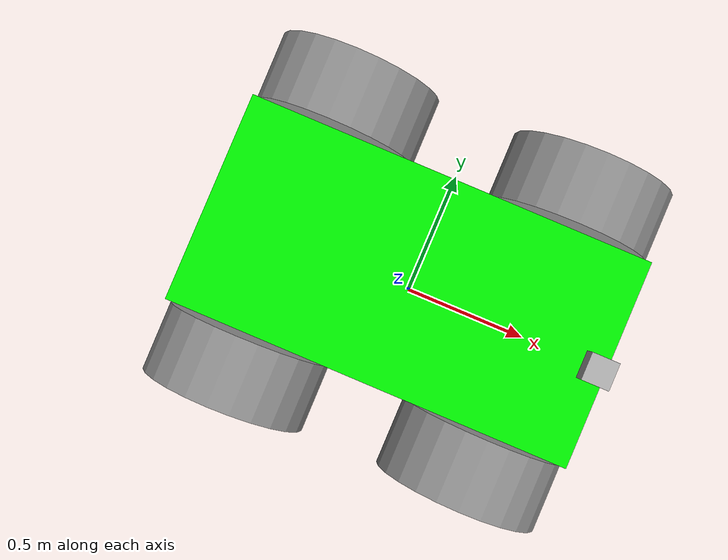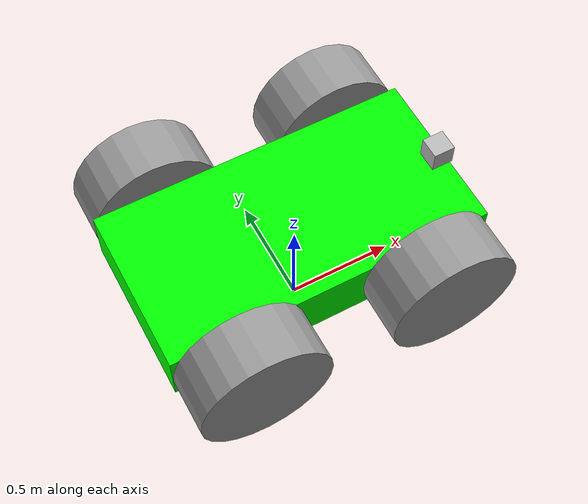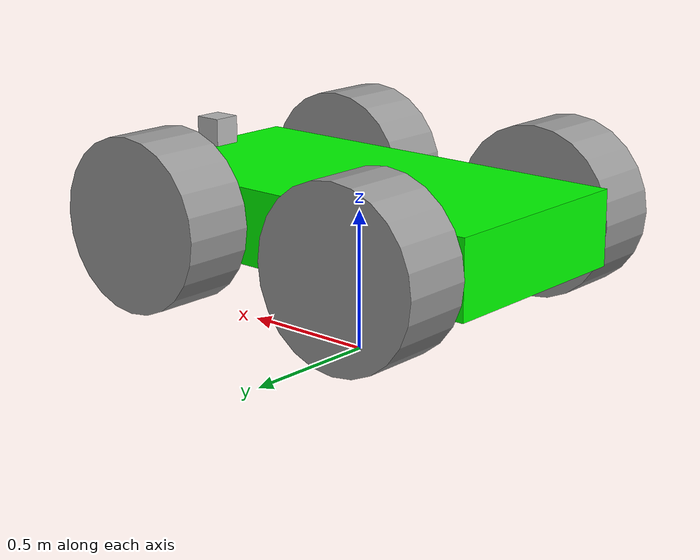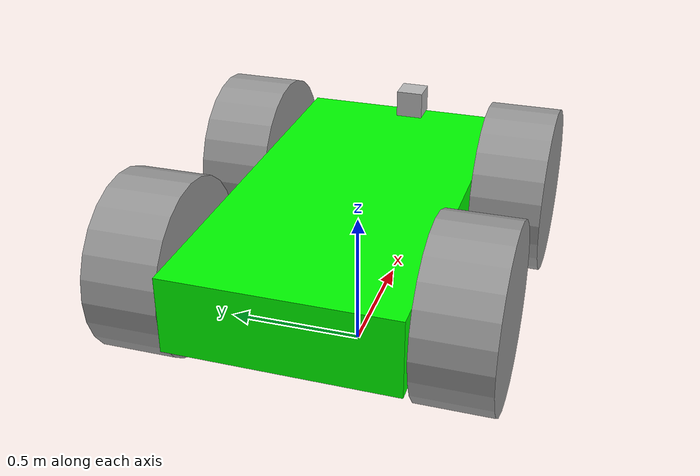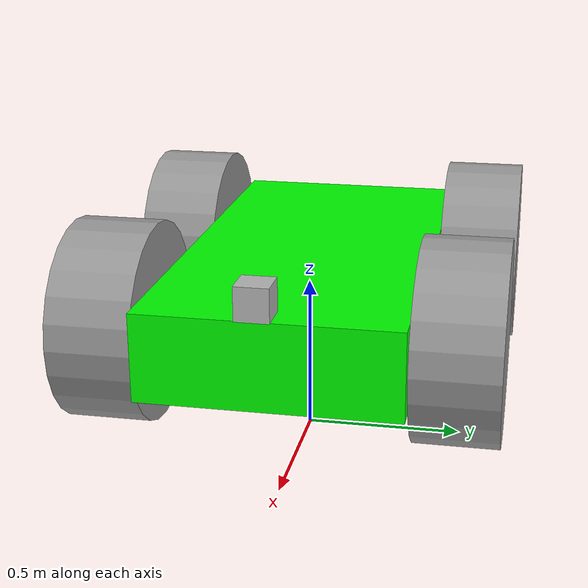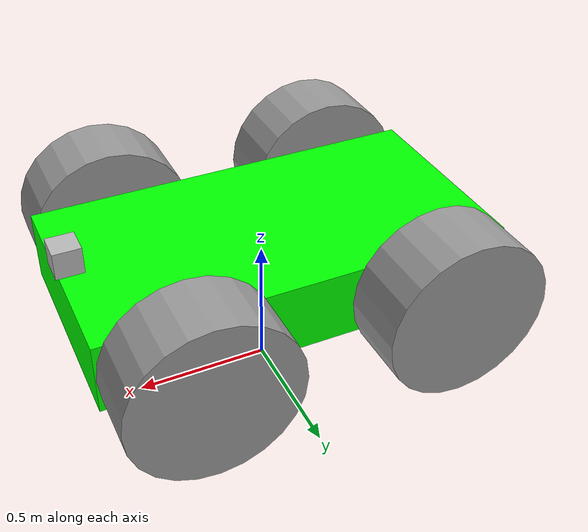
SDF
<?xml version='1.0'?>
<sdf version='1.7'>
  <model name='simple_model'>
    <link name='chassis'>
      <inertial>
        <mass>0.30118</mass>
        <inertia>
          <ixx>0.0164766</ixx>
          <ixy>0</ixy>
          <ixz>0</ixz>
          <iyy>0.0575898</iyy>
          <iyz>0</iyz>
          <izz>0.0705806</izz>
        </inertia>
        <pose>0 0 0 0 -0 0</pose>
      </inertial>
      <pose>-0.007116 0.018906 0.5 0 -0 0</pose>
      <self_collide>0</self_collide>
      <enable_wind>0</enable_wind>
      <kinematic>0</kinematic>
      <gravity>1</gravity>
      <visual name='ModelPreview_1::chassis::visual_1'>
        <pose>0 0 0 0 -0 0</pose>
        <geometry>
          <box>
            <size>1.49168 0.766184 0.263521</size>
          </box>
        </geometry>
        <material>
          <lighting>1</lighting>
          <script>
            <uri>file://media/materials/scripts/gazebo.material</uri>
            <name>Gazebo/Grey</name>
          </script>
          <shader type='pixel'>
            <normal_map>__default__</normal_map>
          </shader>
          <emissive>0 0 0 1</emissive>
          <ambient>0 1 0 0</ambient>
          <diffuse>0.7 0.7 0.7 1</diffuse>
          <specular>0.01 0.01 0.01 1</specular>
        </material>
        <transparency>0</transparency>
        <cast_shadows>1</cast_shadows>
      </visual>
      <visual name='visual'>
        <pose>0 0 0 0 -0 0</pose>
        <geometry>
          <box>
            <size>1.49168 0.766184 0.263521</size>
          </box>
        </geometry>
        <material>
          <lighting>1</lighting>
          <script>
            <uri>file://media/materials/scripts/gazebo.material</uri>
            <name>Gazebo/Grey</name>
          </script>
          <shader type='pixel'>
            <normal_map>__default__</normal_map>
          </shader>
          <emissive>0 0 0 1</emissive>
          <ambient>0 1 0 0</ambient>
          <diffuse>0.7 0.7 0.7 1</diffuse>
          <specular>0.01 0.01 0.01 1</specular>
        </material>
        <transparency>0</transparency>
        <cast_shadows>1</cast_shadows>
      </visual>
      <collision name='collision'>
        <laser_retro>0</laser_retro>
        <max_contacts>10</max_contacts>
        <pose>0 0 0 0 -0 0</pose>
        <geometry>
          <box>
            <size>1.49168 0.766184 0.263521</size>
          </box>
        </geometry>
        <surface>
          <friction>
            <ode>
              <mu>1</mu>
              <mu2>1</mu2>
              <fdir1>0 0 0</fdir1>
              <slip1>0</slip1>
              <slip2>0</slip2>
            </ode>
            <torsional>
              <coefficient>1</coefficient>
              <patch_radius>0</patch_radius>
              <surface_radius>0</surface_radius>
              <use_patch_radius>1</use_patch_radius>
              <ode>
                <slip>0</slip>
              </ode>
            </torsional>
          </friction>
          <bounce>
            <restitution_coefficient>0</restitution_coefficient>
            <threshold>1e+06</threshold>
          </bounce>
          <contact>
            <collide_without_contact>0</collide_without_contact>
            <collide_without_contact_bitmask>1</collide_without_contact_bitmask>
            <collide_bitmask>1</collide_bitmask>
            <ode>
              <soft_cfm>0</soft_cfm>
              <soft_erp>0.2</soft_erp>
              <kp>1e+13</kp>
              <kd>1</kd>
              <max_vel>0.01</max_vel>
              <min_depth>0</min_depth>
            </ode>
            <bullet>
              <split_impulse>1</split_impulse>
              <split_impulse_penetration_threshold>-0.01</split_impulse_penetration_threshold>
              <soft_cfm>0</soft_cfm>
              <soft_erp>0.2</soft_erp>
              <kp>1e+13</kp>
              <kd>1</kd>
            </bullet>
          </contact>
        </surface>
      </collision>
    </link>
    <link name='left_back_wheel'>
      <inertial>
        <mass>1</mass>
        <inertia>
          <ixx>0.145833</ixx>
          <ixy>0</ixy>
          <ixz>0</ixz>
          <iyy>0.145833</iyy>
          <iyz>0</iyz>
          <izz>0.125</izz>
        </inertia>
        <pose>0 0 0 0 -0 0</pose>
      </inertial>
      <pose>-0.457283 0.528461 0.500009 1.5707 2.8e-05 0.004847</pose>
      <gravity>1</gravity>
      <self_collide>0</self_collide>
      <kinematic>0</kinematic>
      <enable_wind>0</enable_wind>
      <visual name='visual'>
        <pose>0 0 0 0 -0 0</pose>
        <geometry>
          <cylinder>
            <radius>0.3</radius>
            <length>0.25</length>
          </cylinder>
        </geometry>
        <material>
          <lighting>1</lighting>
          <script>
            <uri>file://media/materials/scripts/gazebo.material</uri>
            <name>Gazebo/Grey</name>
          </script>
          <shader type='pixel'>
            <normal_map>__default__</normal_map>
          </shader>
          <ambient>0.3 0.3 0.3 1</ambient>
          <diffuse>0.7 0.7 0.7 1</diffuse>
          <specular>0.01 0.01 0.01 1</specular>
          <emissive>0 0 0 1</emissive>
        </material>
        <transparency>0</transparency>
        <cast_shadows>1</cast_shadows>
      </visual>
      <collision name='collision'>
        <laser_retro>0</laser_retro>
        <max_contacts>10</max_contacts>
        <pose>0 0 0 0 -0 0</pose>
        <geometry>
          <cylinder>
            <radius>0.3</radius>
            <length>0.25</length>
          </cylinder>
        </geometry>
        <surface>
          <friction>
            <ode>
              <mu>1</mu>
              <mu2>1</mu2>
              <fdir1>0 0 0</fdir1>
              <slip1>0</slip1>
              <slip2>0</slip2>
            </ode>
            <torsional>
              <coefficient>1</coefficient>
              <patch_radius>0</patch_radius>
              <surface_radius>0</surface_radius>
              <use_patch_radius>1</use_patch_radius>
              <ode>
                <slip>0</slip>
              </ode>
            </torsional>
          </friction>
          <bounce>
            <restitution_coefficient>0</restitution_coefficient>
            <threshold>1e+06</threshold>
          </bounce>
          <contact>
            <collide_without_contact>0</collide_without_contact>
            <collide_without_contact_bitmask>1</collide_without_contact_bitmask>
            <collide_bitmask>1</collide_bitmask>
            <ode>
              <soft_cfm>0</soft_cfm>
              <soft_erp>0.2</soft_erp>
              <kp>1e+13</kp>
              <kd>1</kd>
              <max_vel>0.01</max_vel>
              <min_depth>0</min_depth>
            </ode>
            <bullet>
              <split_impulse>1</split_impulse>
              <split_impulse_penetration_threshold>-0.01</split_impulse_penetration_threshold>
              <soft_cfm>0</soft_cfm>
              <soft_erp>0.2</soft_erp>
              <kp>1e+13</kp>
              <kd>1</kd>
            </bullet>
          </contact>
        </surface>
      </collision>
    </link>
    <link name='left_wheel'>
      <inertial>
        <mass>1</mass>
        <inertia>
          <ixx>0.145833</ixx>
          <ixy>0</ixy>
          <ixz>0</ixz>
          <iyy>0.145833</iyy>
          <iyz>0</iyz>
          <izz>0.125</izz>
        </inertia>
        <pose>0 0 0 0 -0 0</pose>
      </inertial>
      <pose>0.43614 0.530055 0.500001 1.5707 -0 0</pose>
      <gravity>1</gravity>
      <self_collide>0</self_collide>
      <kinematic>0</kinematic>
      <enable_wind>0</enable_wind>
      <visual name='visual'>
        <pose>0 0 0 0 -0 0</pose>
        <geometry>
          <cylinder>
            <radius>0.3</radius>
            <length>0.25</length>
          </cylinder>
        </geometry>
        <material>
          <lighting>1</lighting>
          <script>
            <uri>file://media/materials/scripts/gazebo.material</uri>
            <name>Gazebo/Grey</name>
          </script>
          <shader type='pixel'>
            <normal_map>__default__</normal_map>
          </shader>
          <ambient>0.3 0.3 0.3 1</ambient>
          <diffuse>0.7 0.7 0.7 1</diffuse>
          <specular>0.01 0.01 0.01 1</specular>
          <emissive>0 0 0 1</emissive>
        </material>
        <transparency>0</transparency>
        <cast_shadows>1</cast_shadows>
      </visual>
      <collision name='collision'>
        <laser_retro>0</laser_retro>
        <max_contacts>10</max_contacts>
        <pose>0 0 0 0 -0 0</pose>
        <geometry>
          <cylinder>
            <radius>0.3</radius>
            <length>0.25</length>
          </cylinder>
        </geometry>
        <surface>
          <friction>
            <ode>
              <mu>1</mu>
              <mu2>1</mu2>
              <fdir1>0 0 0</fdir1>
              <slip1>0</slip1>
              <slip2>0</slip2>
            </ode>
            <torsional>
              <coefficient>1</coefficient>
              <patch_radius>0</patch_radius>
              <surface_radius>0</surface_radius>
              <use_patch_radius>1</use_patch_radius>
              <ode>
                <slip>0</slip>
              </ode>
            </torsional>
          </friction>
          <bounce>
            <restitution_coefficient>0</restitution_coefficient>
            <threshold>1e+06</threshold>
          </bounce>
          <contact>
            <collide_without_contact>0</collide_without_contact>
            <collide_without_contact_bitmask>1</collide_without_contact_bitmask>
            <collide_bitmask>1</collide_bitmask>
            <ode>
              <soft_cfm>0</soft_cfm>
              <soft_erp>0.2</soft_erp>
              <kp>1e+13</kp>
              <kd>1</kd>
              <max_vel>0.01</max_vel>
              <min_depth>0</min_depth>
            </ode>
            <bullet>
              <split_impulse>1</split_impulse>
              <split_impulse_penetration_threshold>-0.01</split_impulse_penetration_threshold>
              <soft_cfm>0</soft_cfm>
              <soft_erp>0.2</soft_erp>
              <kp>1e+13</kp>
              <kd>1</kd>
            </bullet>
          </contact>
        </surface>
      </collision>
    </link>
    <link name='right_back_wheel'>
      <inertial>
        <mass>1</mass>
        <inertia>
          <ixx>0.145833</ixx>
          <ixy>0</ixy>
          <ixz>0</ixz>
          <iyy>0.145833</iyy>
          <iyz>0</iyz>
          <izz>0.125</izz>
        </inertia>
        <pose>0 0 0 0 -0 0</pose>
      </inertial>
      <pose>-0.452323 -0.494986 0.500012 1.57071 2.8e-05 0.004847</pose>
      <gravity>1</gravity>
      <self_collide>0</self_collide>
      <kinematic>0</kinematic>
      <enable_wind>0</enable_wind>
      <visual name='visual'>
        <pose>0 0 0 0 -0 0</pose>
        <geometry>
          <cylinder>
            <radius>0.3</radius>
            <length>0.25</length>
          </cylinder>
        </geometry>
        <material>
          <lighting>1</lighting>
          <script>
            <uri>file://media/materials/scripts/gazebo.material</uri>
            <name>Gazebo/Grey</name>
          </script>
          <shader type='pixel'>
            <normal_map>__default__</normal_map>
          </shader>
          <ambient>0.3 0.3 0.3 1</ambient>
          <diffuse>0.7 0.7 0.7 1</diffuse>
          <specular>0.01 0.01 0.01 1</specular>
          <emissive>0 0 0 1</emissive>
        </material>
        <transparency>0</transparency>
        <cast_shadows>1</cast_shadows>
      </visual>
      <collision name='collision'>
        <laser_retro>0</laser_retro>
        <max_contacts>10</max_contacts>
        <pose>0 0 0 0 -0 0</pose>
        <geometry>
          <cylinder>
            <radius>0.3</radius>
            <length>0.25</length>
          </cylinder>
        </geometry>
        <surface>
          <friction>
            <ode>
              <mu>1</mu>
              <mu2>1</mu2>
              <fdir1>0 0 0</fdir1>
              <slip1>0</slip1>
              <slip2>0</slip2>
            </ode>
            <torsional>
              <coefficient>1</coefficient>
              <patch_radius>0</patch_radius>
              <surface_radius>0</surface_radius>
              <use_patch_radius>1</use_patch_radius>
              <ode>
                <slip>0</slip>
              </ode>
            </torsional>
          </friction>
          <bounce>
            <restitution_coefficient>0</restitution_coefficient>
            <threshold>1e+06</threshold>
          </bounce>
          <contact>
            <collide_without_contact>0</collide_without_contact>
            <collide_without_contact_bitmask>1</collide_without_contact_bitmask>
            <collide_bitmask>1</collide_bitmask>
            <ode>
              <soft_cfm>0</soft_cfm>
              <soft_erp>0.2</soft_erp>
              <kp>1e+13</kp>
              <kd>1</kd>
              <max_vel>0.01</max_vel>
              <min_depth>0</min_depth>
            </ode>
            <bullet>
              <split_impulse>1</split_impulse>
              <split_impulse_penetration_threshold>-0.01</split_impulse_penetration_threshold>
              <soft_cfm>0</soft_cfm>
              <soft_erp>0.2</soft_erp>
              <kp>1e+13</kp>
              <kd>1</kd>
            </bullet>
          </contact>
        </surface>
      </collision>
    </link>
    <link name='right_wheel'>
      <inertial>
        <mass>1</mass>
        <inertia>
          <ixx>0.145833</ixx>
          <ixy>0</ixy>
          <ixz>0</ixz>
          <iyy>0.145833</iyy>
          <iyz>0</iyz>
          <izz>0.125</izz>
        </inertia>
        <pose>0 0 0 0 -0 0</pose>
      </inertial>
      <pose>0.43614 -0.489214 0.5 1.5707 -0 0</pose>
      <gravity>1</gravity>
      <self_collide>0</self_collide>
      <kinematic>0</kinematic>
      <enable_wind>0</enable_wind>
      <visual name='visual'>
        <pose>0 0 0 0 -0 0</pose>
        <geometry>
          <cylinder>
            <radius>0.3</radius>
            <length>0.25</length>
          </cylinder>
        </geometry>
        <material>
          <lighting>1</lighting>
          <script>
            <uri>file://media/materials/scripts/gazebo.material</uri>
            <name>Gazebo/Grey</name>
          </script>
          <shader type='pixel'>
            <normal_map>__default__</normal_map>
          </shader>
          <ambient>0.3 0.3 0.3 1</ambient>
          <diffuse>0.7 0.7 0.7 1</diffuse>
          <specular>0.01 0.01 0.01 1</specular>
          <emissive>0 0 0 1</emissive>
        </material>
        <transparency>0</transparency>
        <cast_shadows>1</cast_shadows>
      </visual>
      <collision name='collision'>
        <laser_retro>0</laser_retro>
        <max_contacts>10</max_contacts>
        <pose>0 0 0 0 -0 0</pose>
        <geometry>
          <cylinder>
            <radius>0.3</radius>
            <length>0.25</length>
          </cylinder>
        </geometry>
        <surface>
          <friction>
            <ode>
              <mu>1</mu>
              <mu2>1</mu2>
              <fdir1>0 0 0</fdir1>
              <slip1>0</slip1>
              <slip2>0</slip2>
            </ode>
            <torsional>
              <coefficient>1</coefficient>
              <patch_radius>0</patch_radius>
              <surface_radius>0</surface_radius>
              <use_patch_radius>1</use_patch_radius>
              <ode>
                <slip>0</slip>
              </ode>
            </torsional>
          </friction>
          <bounce>
            <restitution_coefficient>0</restitution_coefficient>
            <threshold>1e+06</threshold>
          </bounce>
          <contact>
            <collide_without_contact>0</collide_without_contact>
            <collide_without_contact_bitmask>1</collide_without_contact_bitmask>
            <collide_bitmask>1</collide_bitmask>
            <ode>
              <soft_cfm>0</soft_cfm>
              <soft_erp>0.2</soft_erp>
              <kp>1e+13</kp>
              <kd>1</kd>
              <max_vel>0.01</max_vel>
              <min_depth>0</min_depth>
            </ode>
            <bullet>
              <split_impulse>1</split_impulse>
              <split_impulse_penetration_threshold>-0.01</split_impulse_penetration_threshold>
              <soft_cfm>0</soft_cfm>
              <soft_erp>0.2</soft_erp>
              <kp>1e+13</kp>
              <kd>1</kd>
            </bullet>
          </contact>
        </surface>
      </collision>
    </link>
    <model name='camera_model'>
      <pose>0.699792 -0.013025 0.683127 0 -0 0</pose>
      <link name='camera_link'>
        <inertial>
          <mass>0.1</mass>
          <inertia>
            <ixx>0.000166667</ixx>
            <iyy>0.000166667</iyy>
            <izz>0.000166667</izz>
            <ixy>0</ixy>
            <ixz>0</ixz>
            <iyz>0</iyz>
          </inertia>
          <pose>0 0 0 0 -0 0</pose>
        </inertial>
        <collision name='collision'>
          <geometry>
            <box>
              <size>0.1 0.1 0.1</size>
            </box>
          </geometry>
          <max_contacts>10</max_contacts>
          <surface>
            <contact>
              <ode/>
            </contact>
            <bounce/>
            <friction>
              <torsional>
                <ode/>
              </torsional>
              <ode/>
            </friction>
          </surface>
        </collision>
        <visual name='visual'>
          <geometry>
            <box>
              <size>0.1 0.1 0.1</size>
            </box>
          </geometry>
        </visual>

        <sensor name="depth_camera" type="depth">
          <visualize>true</visualize>
          <update_rate>30.0</update_rate>
          <camera name="camera">
            <horizontal_fov>1.047198</horizontal_fov>
            <image>
              <width>640</width>
              <height>480</height>
              <format>R8G8B8</format>
            </image>
            <clip>
              <near>0.05</near>
              <far>3</far>
            </clip>
          </camera>
          <plugin name="depth_camera_controller" filename="libgazebo_ros_camera.so">
            <baseline>0.2</baseline>
            <alwaysOn>true</alwaysOn>
            <updateRate>0.0</updateRate>
            <frame_name>camera_depth_frame</frame_name>
            <pointCloudCutoff>0.5</pointCloudCutoff>
            <pointCloudCutoffMax>3.0</pointCloudCutoffMax>
            <distortionK1>0</distortionK1>
            <distortionK2>0</distortionK2>
            <distortionK3>0</distortionK3>
            <distortionT1>0</distortionT1>
            <distortionT2>0</distortionT2>
            <CxPrime>0</CxPrime>
            <Cx>0</Cx>
            <Cy>0</Cy>
            <focalLength>0</focalLength>
            <hackBaseline>0</hackBaseline>
          </plugin>
        </sensor>

        <self_collide>0</self_collide>
        <enable_wind>0</enable_wind>
        <kinematic>0</kinematic>
      </link>
    </model>
    <joint name='chassis_JOINT_0' type='fixed'>
      <parent>chassis</parent>
      <child>camera_model::camera_link</child>
      <pose>0 0 0 0 -0 0</pose>
      <physics>
        <ode>
          <limit>
            <cfm>0</cfm>
            <erp>0.2</erp>
          </limit>
          <suspension>
            <cfm>0</cfm>
            <erp>0.2</erp>
          </suspension>
        </ode>
      </physics>
    </joint>
    <joint name='left_back_wheel_joint' type='revolute'>
      <parent>chassis</parent>
      <child>left_back_wheel</child>
      <pose>0 0 0 0 -0 0</pose>
      <axis>
        <xyz>0 0 1</xyz>
        <limit>
          <lower>-1.79769e+308</lower>
          <upper>1.79769e+308</upper>
          <effort>-1</effort>
          <velocity>-1</velocity>
        </limit>
        <dynamics>
          <spring_reference>0</spring_reference>
          <spring_stiffness>0</spring_stiffness>
          <damping>0</damping>
          <friction>0</friction>
        </dynamics>
      </axis>
      <physics>
        <ode>
          <limit>
            <cfm>0</cfm>
            <erp>0.2</erp>
          </limit>
          <suspension>
            <cfm>0</cfm>
            <erp>0.2</erp>
          </suspension>
        </ode>
      </physics>
    </joint>
    <joint name='left_wheel_joint' type='revolute'>
      <parent>chassis</parent>
      <child>left_wheel</child>
      <pose>0 0 0 0 -0 0</pose>
      <axis>
        <xyz>0 0 1</xyz>
        <limit>
          <lower>-1.79769e+308</lower>
          <upper>1.79769e+308</upper>
          <effort>-1</effort>
          <velocity>-1</velocity>
        </limit>
        <dynamics>
          <spring_reference>0</spring_reference>
          <spring_stiffness>0</spring_stiffness>
          <damping>0</damping>
          <friction>0</friction>
        </dynamics>
      </axis>
      <physics>
        <ode>
          <limit>
            <cfm>0</cfm>
            <erp>0.2</erp>
          </limit>
          <suspension>
            <cfm>0</cfm>
            <erp>0.2</erp>
          </suspension>
        </ode>
      </physics>
    </joint>
    <joint name='right_back_wheel_joint' type='revolute'>
      <parent>chassis</parent>
      <child>right_back_wheel</child>
      <pose>0 0 0 0 -0 0</pose>
      <axis>
        <xyz>0 0 1</xyz>
        <limit>
          <lower>-1.79769e+308</lower>
          <upper>1.79769e+308</upper>
          <effort>-1</effort>
          <velocity>-1</velocity>
        </limit>
        <dynamics>
          <spring_reference>0</spring_reference>
          <spring_stiffness>0</spring_stiffness>
          <damping>0</damping>
          <friction>0</friction>
        </dynamics>
      </axis>
      <physics>
        <ode>
          <limit>
            <cfm>0</cfm>
            <erp>0.2</erp>
          </limit>
          <suspension>
            <cfm>0</cfm>
            <erp>0.2</erp>
          </suspension>
        </ode>
      </physics>
    </joint>
    <joint name='right_wheel_joint' type='revolute'>
      <parent>chassis</parent>
      <child>right_wheel</child>
      <pose>0 0 0 0 -0 0</pose>
      <axis>
        <xyz>0 0 1</xyz>
        <limit>
          <lower>-1.79769e+308</lower>
          <upper>1.79769e+308</upper>
          <effort>-1</effort>
          <velocity>-1</velocity>
        </limit>
        <dynamics>
          <spring_reference>0</spring_reference>
          <spring_stiffness>0</spring_stiffness>
          <damping>0</damping>
          <friction>0</friction>
        </dynamics>
      </axis>
      <physics>
        <ode>
          <limit>
            <cfm>0</cfm>
            <erp>0.2</erp>
          </limit>
          <suspension>
            <cfm>0</cfm>
            <erp>0.2</erp>
          </suspension>
        </ode>
      </physics>
    </joint>
    <static>0</static>
    <allow_auto_disable>1</allow_auto_disable>
    <plugin name='diff_drive' filename='libgazebo_ros_diff_drive.so'>
      <ros>
        <namespace>/</namespace>
        <remapping>cmd_vel:=cmd_vel</remapping>
        <remapping>odom:=odom_demo</remapping>
      </ros>
      <num_wheel_pairs>2</num_wheel_pairs>
      <left_joint>left_wheel_joint</left_joint>
      <left_joint>left_back_wheel_joint</left_joint>
      <right_joint>right_wheel_joint</right_joint>
      <right_joint>right_back_wheel_joint</right_joint>
      <wheel_separation>1.25</wheel_separation>
      <wheel_diameter>0.3</wheel_diameter>
      <max_wheel_torque>20</max_wheel_torque>
      <max_wheel_acceleration>1.0</max_wheel_acceleration>
      <publish_odom>1</publish_odom>
      <publish_odom_tf>1</publish_odom_tf>
      <publish_wheel_tf>1</publish_wheel_tf>
      <odometry_frame>odom_demo</odometry_frame>
      <robot_base_frame>chassis</robot_base_frame>
    </plugin>
  </model>
</sdf>
